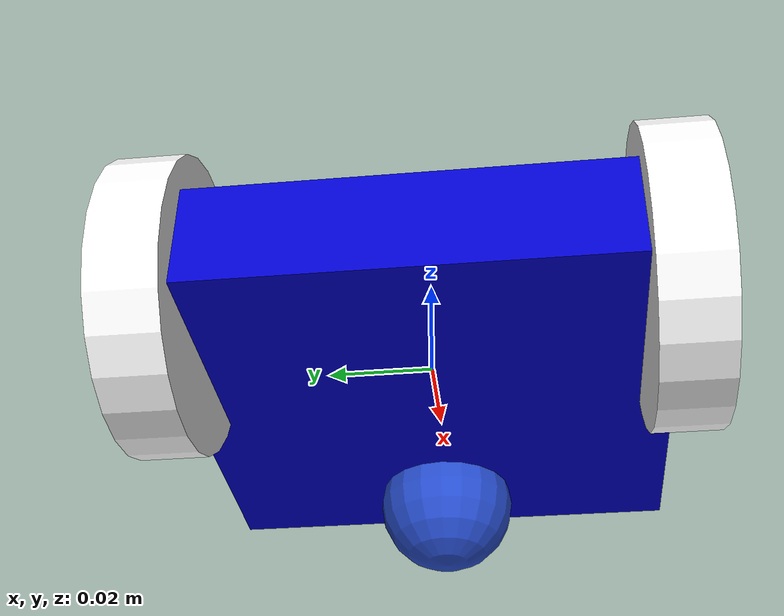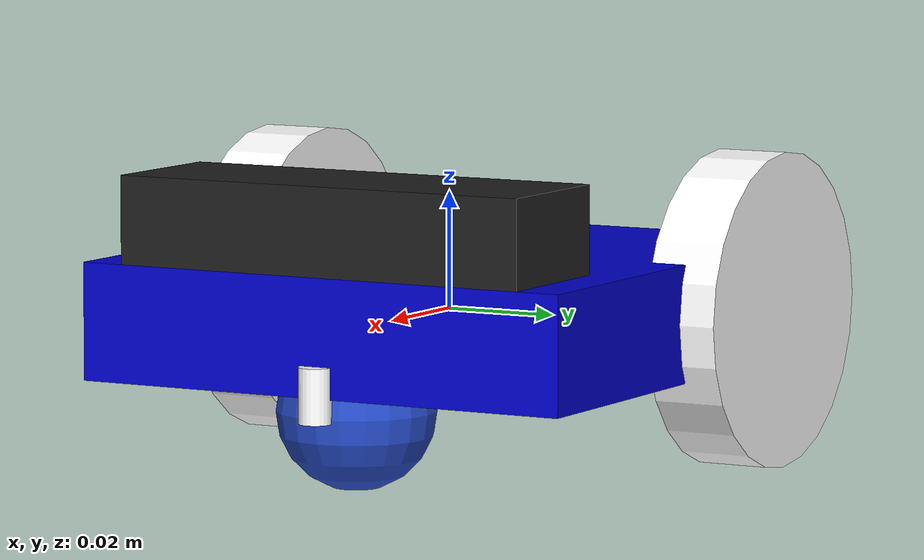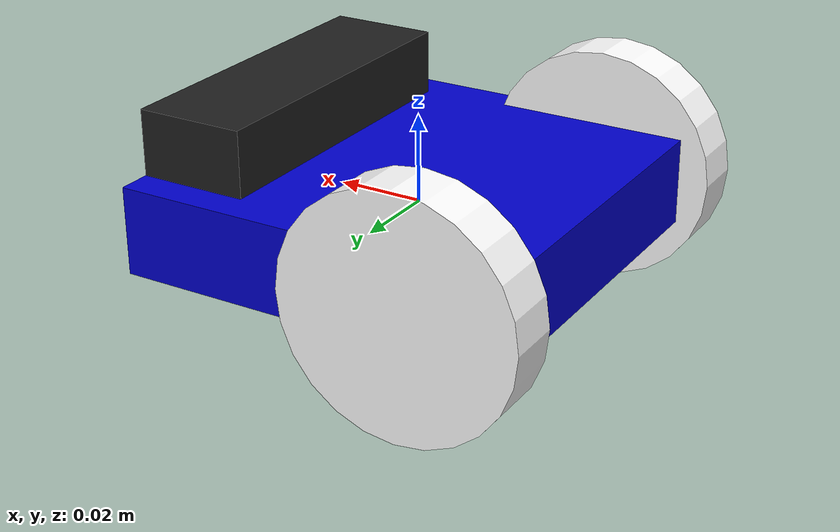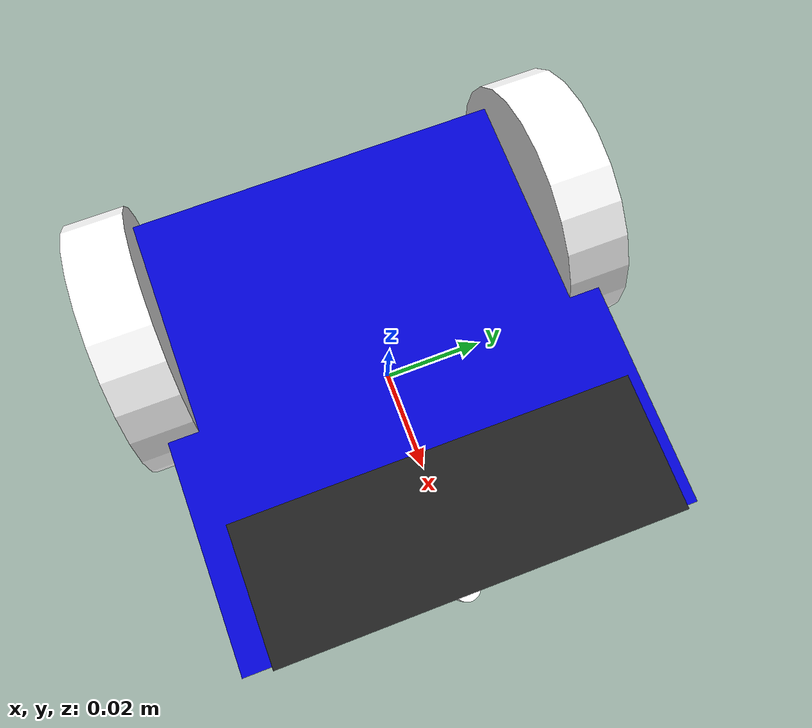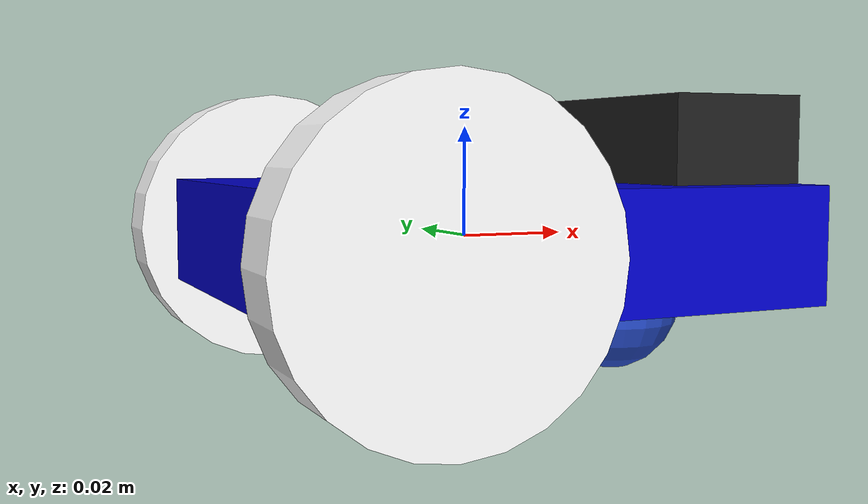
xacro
<?xml version="1.0"?>
<robot name="car" xmlns:xacro="http://ros.org/wiki/xacro" >

<xacro:include filename="$(find line_following_bot)/urdf/gazebo_plugins.xacro" />
    <macro name="cy_inertia" params = "mass r l">
        <inertia ixx="${mass * (3*r*r+(l*l))/12}" ixy="0" ixz="0"
        iyy ="${mass * (3*r*r+(l*l))/12}" iyz="0" izz="${mass * (r*r)/2}"  />
    </macro>
 <material name="blue">
 	<color rgba="0 0 0.8 1"/>
 </material>

 <material name="white">
	 <color rgba="1 1 1 1"/>
 </material>

 <xacro:property name="m" value="1" />
 <xacro:property name="l1" value="0.09" />
 <xacro:property name="b1" value="0.09" />
 <xacro:property name="h1" value="0.02" />

 <xacro:property name="r2" value="0.0135" />

	<link name="chassis">
		<visual>
			<origin rpy="0 0 0" xyz="0 0 0"/>
			<geometry>
				<box size="${l1} ${b1} ${h1}"/>
			</geometry>
			<material name="blue"/>

		</visual>

		<collision name="collision_chassis">
			<geometry>
				<box size="${l1} ${b1} ${h1}"/>
			</geometry>
		</collision>

		<inertial>
			<mass value="${m}"/>
			<origin rpy="0 0 0" xyz="0 0 0"/>
			<inertia ixx="${m*h1*b1/12.0}" ixy="0" ixz="0" iyy="${m*l1*h1/12.0}" iyz="0" izz="${m*l1*b1/12.0}"/>
		</inertial>

		<!-- caster wheel-->
		<visual>
			<origin rpy="0 0 0" xyz="${l1/2-r2} 0 -${r2}"/>
			<geometry>
				<sphere radius="${r2}"/>
			</geometry>
		</visual>

		<collision name="caster_front_collision">
			<origin rpy="0 0 0" xyz="${l1/2-r2} 0 -${r2}"/>
			<geometry>
				<sphere radius="${r2}"/>
			</geometry>
			<surface>
				<friction>
					<ode>
						<mu>0</mu>
						<mu2>0</mu2>
						<slip1>1.0</slip1>
						<slip2>1.0</slip2>
					</ode>
				</friction>
			</surface>
		</collision>
	</link>

 <xacro:property name="l3" value="0.0125" />
 <xacro:property name="r3" value="0.027" />
 <xacro:property name="m3" value="0.1" />

	<link name="right_wheel">
		<visual>
			<origin rpy="0 1.5707 1.5707" xyz="0 0 0"/>
			<geometry>
					<cylinder radius="${r3}" length="${l3}" />
			</geometry>
			<material name="white"/>
		</visual>

		<collision name="collision_right_wheel">
		<origin rpy="0 1.5707 1.5707" xyz="0 0 0"/>
			<geometry>
				<cylinder radius="${r3}" length="${l3}" />
			</geometry>
		</collision>

		<inertial>
			<mass value="${m3}"/>
			<origin rpy="0 1.5707 1.5707" xyz="0 0 0"/>
			<inertia ixx="${m3*((3*r3*r3)+(l3*l3))/12.0}" ixy="0" ixz="0" iyy="${m3*((3*r3*r3)+(l3*l3))/12.0}" iyz="0" izz="${(m3*r3*r3)/2.0}"/>
		</inertial>
	</link>

	<joint name="joint_right_wheel_chassis" type="continuous">
		<origin rpy="0 0 0" xyz="-0.025 -${b1/2} 0"/>
		<child link="right_wheel"/>
		<parent link="chassis"/>
		<axis xyz="0 0.5 0"/>
		<limit effort="10000" velocity="1000"/>
		<joint_properties damping="1.0" friction="1.0"/>
	</joint>

	<link name="left_wheel">
		<visual>
			<origin rpy="0 1.5707 1.5707" xyz="0 0 0"/>
			<geometry>
					<cylinder radius="${r3}" length="${l3}" />
			</geometry>
			<material name="white"/>
		</visual>

		<collision name="collision_left_wheel">
		<origin rpy="0 1.5707 1.5707" xyz="0 0 0"/>
			<geometry>
				<cylinder radius="${r3}" length="${l3}" />
			</geometry>
		</collision>

		<inertial>
			<mass value="${m3}"/>
			<origin rpy="0 1.5707 1.5707" xyz="0 0 0"/>
			<inertia ixx="${m3*((3*r3*r3)+(l3*l3))/12.0}" ixy="0" ixz="0" iyy="${m3*((3*r3*r3)+(l3*l3))/12.0}" iyz="0" izz="${(m3*r3*r3)/2.0}"/>
		</inertial>
	</link>

	<joint name="joint_left_wheel_chassis" type="continuous">
		<origin rpy="0 0 0" xyz="-0.025 ${b1/2} 0"/>
		<child link="left_wheel"/>
		<parent link="chassis"/>
		<axis xyz="0 0.5 0"/>
		<limit effort="10000" velocity="1000"/>
		<joint_properties damping="1.0" friction="1.0"/>
	</joint>

 <xacro:property name="mk" value="0.05" />
 <xacro:property name="lk" value="0.025" />
 <xacro:property name="bk" value="0.075" />
 <xacro:property name="hk" value="0.015" />

 <!--Laser Sensor-->
 <link name="sensor_laser">
    <inertial>
      <origin xyz="0 0 0" rpy="0 0 0"/>
      <mass value="0.05"/>
      <xacro:cy_inertia mass="0.05" r="0.0028125" l="0.009375" />
    </inertial>
    <visual>
      <origin xyz="0 0 0" rpy="0 0 0"/>
      <geometry>
        <cylinder radius="0.0028125" length="0.009375"/>
      </geometry>
      <material name="white"/>
    </visual>
    <collision>
      <origin xyz="0 0 0" rpy="0 0 0"/>
      <geometry>
        <cylinder radius="0.0028125" length="0.009375"/>
      </geometry>
    </collision>
  </link>

  <joint name="joint_sensor_laser" type="fixed">
     <origin xyz="0.045 0 -0.009375" rpy="0 0 0"/>
     <parent link="chassis"/>
     <child link="sensor_laser"/>

  </joint>

	<!-- Kinect Sensor -->
	<link name="kinect">
		<visual>
			<origin rpy="0 0 0" xyz="0 0 0"/>
			<geometry>
					<box size="${lk} ${bk} ${hk}"/>
			</geometry>
		</visual>

		<collision name="collision_kinect">
			<geometry>
					<box size="${lk} ${bk} ${hk}"/>
			</geometry>
		</collision>

		<inertial>
			<mass value="${mk}"/>
			<origin rpy="0 0 0" xyz="0 -0.01 0"/>
			<inertia ixx="${mk*hk*bk/12.0}" ixy="0" ixz="0" iyy="${mk*lk*hk/12.0}" iyz="0" izz="${mk*lk*bk/12.0}"/>
		</inertial>
	</link>

	<joint name="joint_kinect_chassis" type="fixed">
		<origin rpy="0 0 0" xyz="${l1/2-lk/2} 0 ${h1/2+hk/2}"/>
		<child link="kinect"/>
		<parent link="chassis"/>

	</joint>

	<link name="kinect_link" />

	<joint name="joint_kinect_link" type="fixed">
		<origin rpy="-1.5707 0 -1.5707" xyz="${l1/2} 0 ${h1/2+hk/2}"/>
		<child link="kinect_link"/>
		<parent link="chassis"/>

	</joint>

</robot>
